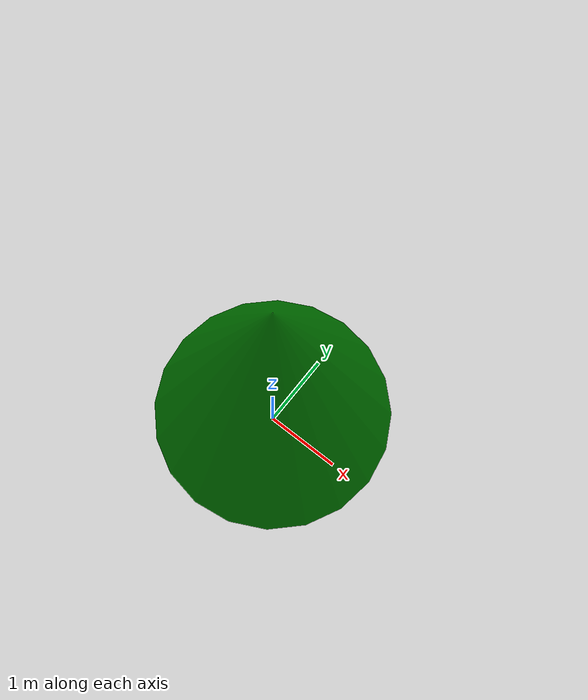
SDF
<?xml version="1.0" ?>
<sdf version="1.10">
  <model name="my_tree">
    <static>true</static>
    <link name="link">
      <visual name="trunk">
        <geometry><cylinder><radius>0.2</radius><length>2.0</length></cylinder></geometry>
        <material><ambient>0.4 0.2 0 1</ambient><diffuse>0.4 0.2 0 1</diffuse></material>
      </visual>
      <collision name="trunk_col">
        <geometry><cylinder><radius>0.2</radius><length>2.0</length></cylinder></geometry>
      </collision>
      <visual name="leaves">
        <pose>0 0 2.0 0 0 0</pose>
        <geometry><cone><radius>1.5</radius><length>3.0</length></cone></geometry>
        <material><ambient>0 0.5 0 1</ambient><diffuse>0 0.5 0 1</diffuse></material>
      </visual>
    </link>
  </model>
</sdf>
